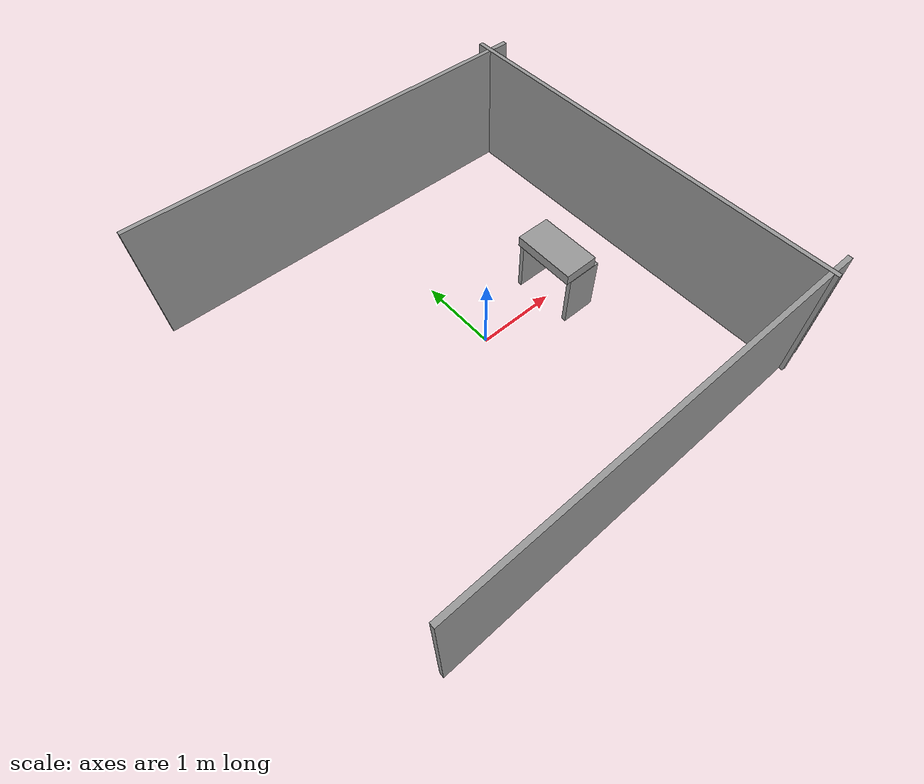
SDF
<sdf version="1.6">
 <world name="default">
  <plugin name="voxblox_ground_truth_plugin" filename="libvoxblox_ground_truth_plugin.so"/>
  <light name="sun" type="directional">
   <pose>0 0 10 0 -0 0</pose>
   <diffuse>0.8 0.8 0.8 1</diffuse>
   <specular>0.1 0.1 0.1 1</specular>
   <attenuation>
    <range>1000</range>
    <constant>0.9</constant>
    <linear>0.01</linear>
    <quadratic>0.001</quadratic>
   </attenuation>
   <direction>-0.5 0.5 -1</direction>
  </light>
  <gravity>0 0 -9.8</gravity>
  <magnetic_field>6e-06 2.3e-05 -4.2e-05</magnetic_field>
  <atmosphere type="adiabatic"/>
  <physics name="default_physics" default="0" type="ode">
   <max_step_size>0.01</max_step_size>
   <real_time_update_rate>100</real_time_update_rate>
   <real_time_factor>1</real_time_factor>
  </physics>
  <scene><ambient>0.4 0.4 0.4 1</ambient><background>0.7 0.7 0.7 1</background><shadows>1</shadows></scene>
  <spherical_coordinates>
   <surface_model>EARTH_WGS84</surface_model>
   <latitude_deg>0</latitude_deg>
   <longitude_deg>0</longitude_deg>
   <elevation>0</elevation>
   <heading_deg>0</heading_deg>
  </spherical_coordinates>
  <audio><device>default</device></audio>
  <model name="unit_box">
   <static>1</static>
   <pose>1.11905 -0.388799 0.363741 -7.5e-05 -0.000345 -0.018383</pose>
   <link name="unit_box::unit_box::link">
    <inertial>
     <mass>1</mass>
     <inertia>
      <ixx>0.166667</ixx>
      <ixy>0</ixy>
      <ixz>0</ixz>
      <iyy>0.166667</iyy>
      <iyz>0</iyz>
      <izz>0.166667</izz>
     </inertia>
    </inertial>
    <collision name="collision">
     <geometry><box><size>0.437584 0.055745 0.725748</size></box></geometry>
    </collision>
    <visual name="visual">
     <geometry><box><size>0.437584 0.055745 0.725748</size></box></geometry>
     <material>
      <script><name>Gazebo/Grey</name><uri>file://media/materials/scripts/gazebo.material</uri></script>
     </material>
    </visual>
   </link>
  </model>
  <model name="unit_box_clone_clone">
   <static>1</static>
   <pose>1.06136 -0.016187 0.803623 0.001545 0.000654 -0.012116</pose>
   <link name="unit_box_clone_clone::unit_box_clone_clone::link">
    <inertial>
     <mass>1</mass>
     <inertia>
      <ixx>0.166667</ixx>
      <ixy>0</ixy>
      <ixz>0</ixz>
      <iyy>0.166667</iyy>
      <iyz>0</iyz>
      <izz>0.166667</izz>
     </inertia>
    </inertial>
    <collision name="collision">
     <geometry><box><size>0.437584 0.793926 0.136109</size></box></geometry>
    </collision>
    <visual name="visual">
     <geometry><box><size>0.437584 0.793926 0.136109</size></box></geometry>
     <material>
      <script><name>Gazebo/Grey</name><uri>file://media/materials/scripts/gazebo.material</uri></script>
     </material>
    </visual>
   </link>
  </model>
  <model name="unit_box_clone">
   <static>1</static>
   <pose>1.11019 0.360838 0.394646 -7.4e-05 0.00014 -0.018364</pose>
   <link name="unit_box_clone::unit_box::link">
    <inertial>
     <mass>1</mass>
     <inertia>
      <ixx>0.166667</ixx>
      <ixy>0</ixy>
      <ixz>0</ixz>
      <iyy>0.166667</iyy>
      <iyz>0</iyz>
      <izz>0.166667</izz>
     </inertia>
    </inertial>
    <collision name="collision"><geometry><box><size>0.437584 0.055745 0.77596</size></box></geometry></collision>
    <visual name="visual">
     <geometry><box><size>0.437584 0.055745 0.77596</size></box></geometry>
     <material>
      <script><name>Gazebo/Grey</name><uri>file://media/materials/scripts/gazebo.material</uri></script>
     </material>
    </visual>
   </link>
  </model>
  <model name="unit_box_clone_clone_0">
   <static>1</static>
   <pose>-0.110352 2.45616 0.917777 -7.4e-05 0.00014 -0.018364</pose>
   <link name="unit_box_clone::unit_box::link">
    <inertial>
     <mass>1</mass>
     <inertia>
      <ixx>0.166667</ixx>
      <ixy>0</ixy>
      <ixz>0</ixz>
      <iyy>0.166667</iyy>
      <iyz>0</iyz>
      <izz>0.166667</izz>
     </inertia>
    </inertial>
    <collision name="collision"><geometry><box><size>5.15828 0.055745 1.63946</size></box></geometry></collision>
    <visual name="visual">
     <geometry><box><size>5.15828 0.055745 1.63946</size></box></geometry>
     <material>
      <script><name>Gazebo/Grey</name><uri>file://media/materials/scripts/gazebo.material</uri></script>
     </material>
    </visual>
   </link>
  </model>
  <model name="unit_box_clone_clone_0_clone">
   <static>1</static>
   <pose>-0.085742 -2.4453 0.917777 -7.4e-05 0.00014 -0.018364</pose>
   <link name="unit_box_clone::unit_box::link">
    <inertial>
     <mass>1</mass>
     <inertia>
      <ixx>0.166667</ixx>
      <ixy>0</ixy>
      <ixz>0</ixz>
      <iyy>0.166667</iyy>
      <iyz>0</iyz>
      <izz>0.166667</izz>
     </inertia>
    </inertial>
    <collision name="collision"><geometry><box><size>5.15827 0.055745 1.63946</size></box></geometry></collision>
    <visual name="visual">
     <geometry><box><size>5.15827 0.055745 1.63946</size></box></geometry>
     <material>
      <script><name>Gazebo/Grey</name><uri>file://media/materials/scripts/gazebo.material</uri></script>
     </material>
    </visual>
   </link>
  </model>
  <model name="unit_box_clone_clone_0_clone_clone_clone">
   <static>1</static>
   <pose>2.21387 0.016682 0.917777 -0.000141 -7.2e-05 -1.57444</pose>
   <link name="unit_box_clone::unit_box::link">
    <inertial>
     <mass>1</mass>
     <inertia>
      <ixx>0.166667</ixx>
      <ixy>0</ixy>
      <ixz>0</ixz>
      <iyy>0.166667</iyy>
      <iyz>0</iyz>
      <izz>0.166667</izz>
     </inertia>
    </inertial>
    <collision name="collision"><geometry><box><size>5.15827 0.055745 1.63946</size></box></geometry></collision>
    <visual name="visual">
     <geometry><box><size>5.15827 0.055745 1.63946</size></box></geometry>
     <material>
      <script><name>Gazebo/Grey</name><uri>file://media/materials/scripts/gazebo.material</uri></script>
     </material>
    </visual>
   </link>
  </model>
 </world>
</sdf>
